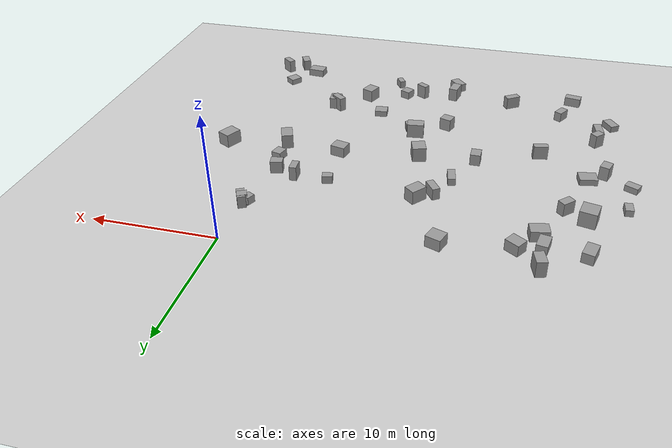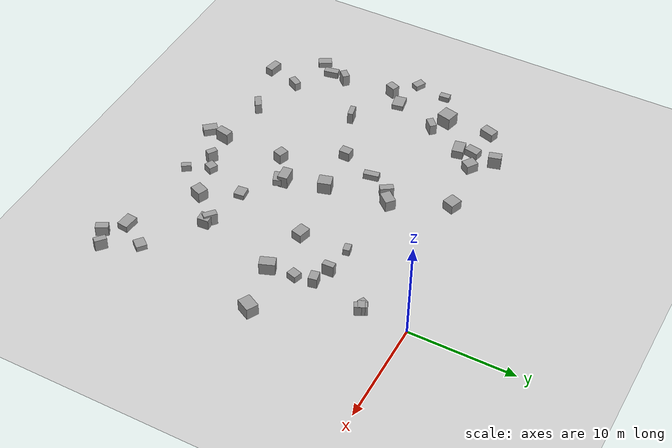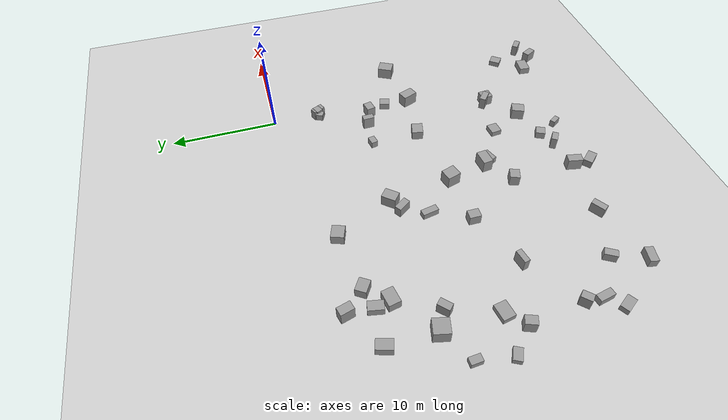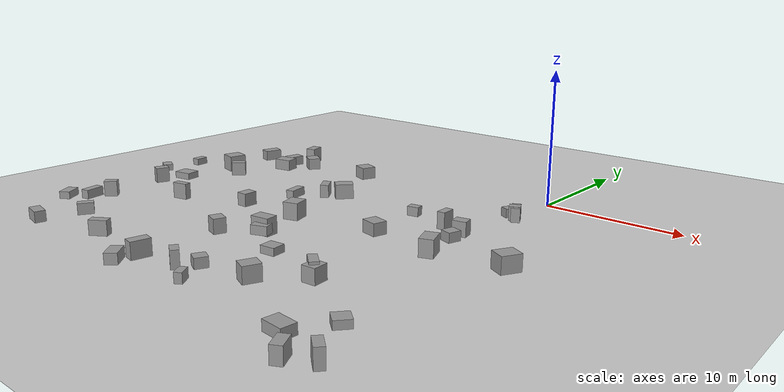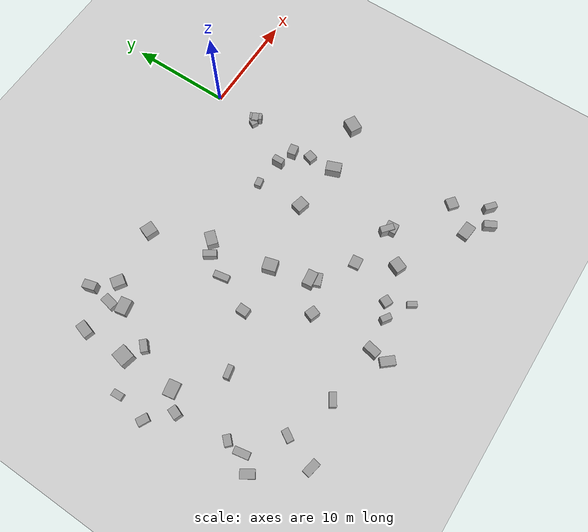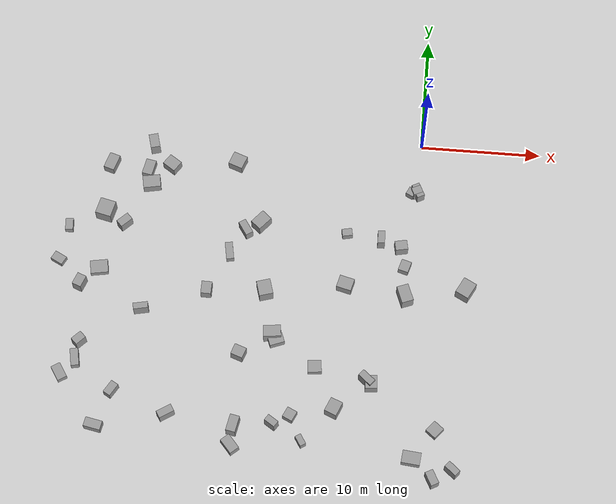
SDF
<sdf version="1.7">
 <world name="default">
  <model name="ground_plane">
   <static>1</static>
   <link name="link">
    <collision name="collision">
     <geometry><plane><normal>0 0 1</normal><size>100 100</size></plane></geometry>
     <surface><friction><ode><mu>100</mu><mu2>50</mu2></ode></friction></surface>
    </collision>
    <visual name="visual">
     <cast_shadows>0</cast_shadows>
     <geometry><plane><normal>0 0 1</normal><size>100 100</size></plane></geometry>
     <material>
      <script><uri>file://media/materials/scripts/gazebo.material</uri><name>Gazebo/Grey</name></script>
     </material>
    </visual>
   </link>
  </model>
  <model name="unit_box_1">
   <static>true</static>
   <pose>-28.835129908935965 -9.783527657663477 0.5 0 -0 257.6770218911916</pose>
   <link name="link">
    <inertial>
     <mass>1</mass>
     <inertia>
      <ixx>0.166667</ixx>
      <ixy>0</ixy>
      <ixz>0</ixz>
      <iyy>0.166667</iyy>
      <iyz>0</iyz>
      <izz>0.166667</izz>
     </inertia>
    </inertial>
    <collision name="collision">
     <geometry><box><size>0.6333953735880681 1.008863503317531 0.5489622355451517</size></box></geometry>
    </collision>
    <visual name="visual">
     <geometry><box><size>0.6333953735880681 1.008863503317531 0.5489622355451517</size></box></geometry>
     <material>
      <script><name>Gazebo/Grey</name><uri>file://media/materials/scripts/gazebo.material</uri></script>
     </material>
    </visual>
   </link>
  </model>
  <model name="unit_box_5">
   <static>true</static>
   <pose>-0.5888013018914684 -13.825873107875235 0.5 0 -0 323.95076612812113</pose>
   <link name="link">
    <inertial>
     <mass>1</mass>
     <inertia>
      <ixx>0.166667</ixx>
      <ixy>0</ixy>
      <ixz>0</ixz>
      <iyy>0.166667</iyy>
      <iyz>0</iyz>
      <izz>0.166667</izz>
     </inertia>
    </inertial>
    <collision name="collision">
     <geometry><box><size>0.9740812102403196 1.4679312028211413 1.3884404087417037</size></box></geometry>
    </collision>
    <visual name="visual">
     <geometry><box><size>0.9740812102403196 1.4679312028211413 1.3884404087417037</size></box></geometry>
     <material>
      <script><name>Gazebo/Grey</name><uri>file://media/materials/scripts/gazebo.material</uri></script>
     </material>
    </visual>
   </link>
  </model>
  <model name="unit_box_15">
   <static>true</static>
   <pose>-22.42774986537877 -5.39817078722103 0.5 0 -0 26.89385585650175</pose>
   <link name="link">
    <inertial>
     <mass>1</mass>
     <inertia>
      <ixx>0.166667</ixx>
      <ixy>0</ixy>
      <ixz>0</ixz>
      <iyy>0.166667</iyy>
      <iyz>0</iyz>
      <izz>0.166667</izz>
     </inertia>
    </inertial>
    <collision name="collision">
     <geometry><box><size>1.0752779468340803 1.451434193957634 0.884597481298783</size></box></geometry>
    </collision>
    <visual name="visual">
     <geometry><box><size>1.0752779468340803 1.451434193957634 0.884597481298783</size></box></geometry>
     <material>
      <script><name>Gazebo/Grey</name><uri>file://media/materials/scripts/gazebo.material</uri></script>
     </material>
    </visual>
   </link>
  </model>
  <model name="unit_box_24">
   <static>true</static>
   <pose>-5.674999034693748 -23.92239845263095 0.5 0 -0 20.024094226079665</pose>
   <link name="link">
    <inertial>
     <mass>1</mass>
     <inertia>
      <ixx>0.166667</ixx>
      <ixy>0</ixy>
      <ixz>0</ixz>
      <iyy>0.166667</iyy>
      <iyz>0</iyz>
      <izz>0.166667</izz>
     </inertia>
    </inertial>
    <collision name="collision">
     <geometry><box><size>1.215337846311781 1.0442918365608516 1.1445933310478278</size></box></geometry>
    </collision>
    <visual name="visual">
     <geometry><box><size>1.215337846311781 1.0442918365608516 1.1445933310478278</size></box></geometry>
     <material>
      <script><name>Gazebo/Grey</name><uri>file://media/materials/scripts/gazebo.material</uri></script>
     </material>
    </visual>
   </link>
  </model>
  <model name="unit_box_30">
   <static>true</static>
   <pose>-5.7227796839441964 -8.65081539558837 0.5 0 -0 273.5123597073977</pose>
   <link name="link">
    <inertial>
     <mass>1</mass>
     <inertia>
      <ixx>0.166667</ixx>
      <ixy>0</ixy>
      <ixz>0</ixz>
      <iyy>0.166667</iyy>
      <iyz>0</iyz>
      <izz>0.166667</izz>
     </inertia>
    </inertial>
    <collision name="collision">
     <geometry><box><size>0.8382652194335364 0.6307499962533054 0.6695288904015347</size></box></geometry>
    </collision>
    <visual name="visual">
     <geometry><box><size>0.8382652194335364 0.6307499962533054 0.6695288904015347</size></box></geometry>
     <material>
      <script><name>Gazebo/Grey</name><uri>file://media/materials/scripts/gazebo.material</uri></script>
     </material>
    </visual>
   </link>
  </model>
  <model name="unit_box_31">
   <static>true</static>
   <pose>-14.150281883332969 -8.950827690536414 0.5 0 -0 278.62585095943035</pose>
   <link name="link">
    <inertial>
     <mass>1</mass>
     <inertia>
      <ixx>0.166667</ixx>
      <ixy>0</ixy>
      <ixz>0</ixz>
      <iyy>0.166667</iyy>
      <iyz>0</iyz>
      <izz>0.166667</izz>
     </inertia>
    </inertial>
    <collision name="collision">
     <geometry><box><size>1.2906249621792236 0.6320051280488989 0.9832819269284849</size></box></geometry>
    </collision>
    <visual name="visual">
     <geometry><box><size>1.2906249621792236 0.6320051280488989 0.9832819269284849</size></box></geometry>
     <material>
      <script><name>Gazebo/Grey</name><uri>file://media/materials/scripts/gazebo.material</uri></script>
     </material>
    </visual>
   </link>
  </model>
  <model name="unit_box_32">
   <static>true</static>
   <pose>4.066421986708839 -28.262519831651417 0.5 0 -0 120.25010938333372</pose>
   <link name="link">
    <inertial>
     <mass>1</mass>
     <inertia>
      <ixx>0.166667</ixx>
      <ixy>0</ixy>
      <ixz>0</ixz>
      <iyy>0.166667</iyy>
      <iyz>0</iyz>
      <izz>0.166667</izz>
     </inertia>
    </inertial>
    <collision name="collision">
     <geometry><box><size>0.5795722155270291 1.1500049747034757 1.2832028245057363</size></box></geometry>
    </collision>
    <visual name="visual">
     <geometry><box><size>0.5795722155270291 1.1500049747034757 1.2832028245057363</size></box></geometry>
     <material>
      <script><name>Gazebo/Grey</name><uri>file://media/materials/scripts/gazebo.material</uri></script>
     </material>
    </visual>
   </link>
  </model>
  <model name="unit_box_36">
   <static>true</static>
   <pose>-13.676016141193546 -27.61321423329436 0.5 0 -0 266.1799930001511</pose>
   <link name="link">
    <inertial>
     <mass>1</mass>
     <inertia>
      <ixx>0.166667</ixx>
      <ixy>0</ixy>
      <ixz>0</ixz>
      <iyy>0.166667</iyy>
      <iyz>0</iyz>
      <izz>0.166667</izz>
     </inertia>
    </inertial>
    <collision name="collision">
     <geometry><box><size>1.3806587493684201 0.8453353389300957 0.7502782253469399</size></box></geometry>
    </collision>
    <visual name="visual">
     <geometry><box><size>1.3806587493684201 0.8453353389300957 0.7502782253469399</size></box></geometry>
     <material>
      <script><name>Gazebo/Grey</name><uri>file://media/materials/scripts/gazebo.material</uri></script>
     </material>
    </visual>
   </link>
  </model>
  <model name="unit_box_41">
   <static>true</static>
   <pose>-20.880846432795693 -3.5714569044857534 0.5 0 -0 8.834705397557126</pose>
   <link name="link">
    <inertial>
     <mass>1</mass>
     <inertia>
      <ixx>0.166667</ixx>
      <ixy>0</ixy>
      <ixz>0</ixz>
      <iyy>0.166667</iyy>
      <iyz>0</iyz>
      <izz>0.166667</izz>
     </inertia>
    </inertial>
    <collision name="collision">
     <geometry><box><size>1.1835107260073632 0.9937436465557536 0.9247212692741201</size></box></geometry>
    </collision>
    <visual name="visual">
     <geometry><box><size>1.1835107260073632 0.9937436465557536 0.9247212692741201</size></box></geometry>
     <material>
      <script><name>Gazebo/Grey</name><uri>file://media/materials/scripts/gazebo.material</uri></script>
     </material>
    </visual>
   </link>
  </model>
  <model name="unit_box_45">
   <static>true</static>
   <pose>-0.07162630095542966 -4.427317866867625 0.5 0 -0 355.4649861310336</pose>
   <link name="link">
    <inertial>
     <mass>1</mass>
     <inertia>
      <ixx>0.166667</ixx>
      <ixy>0</ixy>
      <ixz>0</ixz>
      <iyy>0.166667</iyy>
      <iyz>0</iyz>
      <izz>0.166667</izz>
     </inertia>
    </inertial>
    <collision name="collision">
     <geometry><box><size>0.6480502307317497 1.1926558393352256 1.0270985599752414</size></box></geometry>
    </collision>
    <visual name="visual">
     <geometry><box><size>0.6480502307317497 1.1926558393352256 1.0270985599752414</size></box></geometry>
     <material>
      <script><name>Gazebo/Grey</name><uri>file://media/materials/scripts/gazebo.material</uri></script>
     </material>
    </visual>
   </link>
  </model>
  <model name="unit_box_50">
   <static>true</static>
   <pose>-13.702313754472232 -19.842423253167865 0.5 0 -0 12.22615030335728</pose>
   <link name="link">
    <inertial>
     <mass>1</mass>
     <inertia>
      <ixx>0.166667</ixx>
      <ixy>0</ixy>
      <ixz>0</ixz>
      <iyy>0.166667</iyy>
      <iyz>0</iyz>
      <izz>0.166667</izz>
     </inertia>
    </inertial>
    <collision name="collision">
     <geometry><box><size>1.0151287739844679 0.9084703975695492 1.084861941129661</size></box></geometry>
    </collision>
    <visual name="visual">
     <geometry><box><size>1.0151287739844679 0.9084703975695492 1.084861941129661</size></box></geometry>
     <material>
      <script><name>Gazebo/Grey</name><uri>file://media/materials/scripts/gazebo.material</uri></script>
     </material>
    </visual>
   </link>
  </model>
  <model name="unit_box_51">
   <static>true</static>
   <pose>-8.088868347634431 -26.84699272649932 0.5 0 -0 310.0146221195165</pose>
   <link name="link">
    <inertial>
     <mass>1</mass>
     <inertia>
      <ixx>0.166667</ixx>
      <ixy>0</ixy>
      <ixz>0</ixz>
      <iyy>0.166667</iyy>
      <iyz>0</iyz>
      <izz>0.166667</izz>
     </inertia>
    </inertial>
    <collision name="collision">
     <geometry><box><size>0.915104690532168 0.5099911999001068 0.6950304844249293</size></box></geometry>
    </collision>
    <visual name="visual">
     <geometry><box><size>0.915104690532168 0.5099911999001068 0.6950304844249293</size></box></geometry>
     <material>
      <script><name>Gazebo/Grey</name><uri>file://media/materials/scripts/gazebo.material</uri></script>
     </material>
    </visual>
   </link>
  </model>
  <model name="unit_box_53">
   <static>true</static>
   <pose>-26.903335476549714 -21.3723237218221 0.5 0 -0 249.94306405126957</pose>
   <link name="link">
    <inertial>
     <mass>1</mass>
     <inertia>
      <ixx>0.166667</ixx>
      <ixy>0</ixy>
      <ixz>0</ixz>
      <iyy>0.166667</iyy>
      <iyz>0</iyz>
      <izz>0.166667</izz>
     </inertia>
    </inertial>
    <collision name="collision">
     <geometry><box><size>1.449195397385079 0.6641024886767991 0.6800975156356679</size></box></geometry>
    </collision>
    <visual name="visual">
     <geometry><box><size>1.449195397385079 0.6641024886767991 0.6800975156356679</size></box></geometry>
     <material>
      <script><name>Gazebo/Grey</name><uri>file://media/materials/scripts/gazebo.material</uri></script>
     </material>
    </visual>
   </link>
  </model>
  <model name="unit_box_54">
   <static>true</static>
   <pose>-16.86672693158045 -14.557856849215336 0.5 0 -0 325.14069538919586</pose>
   <link name="link">
    <inertial>
     <mass>1</mass>
     <inertia>
      <ixx>0.166667</ixx>
      <ixy>0</ixy>
      <ixz>0</ixz>
      <iyy>0.166667</iyy>
      <iyz>0</iyz>
      <izz>0.166667</izz>
     </inertia>
    </inertial>
    <collision name="collision">
     <geometry><box><size>1.058343786446157 0.848355353292623 0.982864033663327</size></box></geometry>
    </collision>
    <visual name="visual">
     <geometry><box><size>1.058343786446157 0.848355353292623 0.982864033663327</size></box></geometry>
     <material>
      <script><name>Gazebo/Grey</name><uri>file://media/materials/scripts/gazebo.material</uri></script>
     </material>
    </visual>
   </link>
  </model>
  <model name="unit_box_56">
   <static>true</static>
   <pose>-0.1627593552055835 -4.416408330676138 0.5 0 -0 89.96705811375831</pose>
   <link name="link">
    <inertial>
     <mass>1</mass>
     <inertia>
      <ixx>0.166667</ixx>
      <ixy>0</ixy>
      <ixz>0</ixz>
      <iyy>0.166667</iyy>
      <iyz>0</iyz>
      <izz>0.166667</izz>
     </inertia>
    </inertial>
    <collision name="collision">
     <geometry><box><size>0.6525024454428184 0.7996111831120352 1.0432135367207624</size></box></geometry>
    </collision>
    <visual name="visual">
     <geometry><box><size>0.6525024454428184 0.7996111831120352 1.0432135367207624</size></box></geometry>
     <material>
      <script><name>Gazebo/Grey</name><uri>file://media/materials/scripts/gazebo.material</uri></script>
     </material>
    </visual>
   </link>
  </model>
  <model name="unit_box_57">
   <static>true</static>
   <pose>4.363951082256413 -12.913666246183752 0.5 0 -0 10.509507553653169</pose>
   <link name="link">
    <inertial>
     <mass>1</mass>
     <inertia>
      <ixx>0.166667</ixx>
      <ixy>0</ixy>
      <ixz>0</ixz>
      <iyy>0.166667</iyy>
      <iyz>0</iyz>
      <izz>0.166667</izz>
     </inertia>
    </inertial>
    <collision name="collision">
     <geometry><box><size>1.4317829191842009 1.1697585779740316 1.2310805891900445</size></box></geometry>
    </collision>
    <visual name="visual">
     <geometry><box><size>1.4317829191842009 1.1697585779740316 1.2310805891900445</size></box></geometry>
     <material>
      <script><name>Gazebo/Grey</name><uri>file://media/materials/scripts/gazebo.material</uri></script>
     </material>
    </visual>
   </link>
  </model>
  <model name="unit_box_60">
   <static>true</static>
   <pose>-15.382795874876035 -2.8888881738511216 0.5 0 -0 89.18422930194788</pose>
   <link name="link">
    <inertial>
     <mass>1</mass>
     <inertia>
      <ixx>0.166667</ixx>
      <ixy>0</ixy>
      <ixz>0</ixz>
      <iyy>0.166667</iyy>
      <iyz>0</iyz>
      <izz>0.166667</izz>
     </inertia>
    </inertial>
    <collision name="collision">
     <geometry><box><size>1.1505220542869972 1.221154632923616 0.9489783817124646</size></box></geometry>
    </collision>
    <visual name="visual">
     <geometry><box><size>1.1505220542869972 1.221154632923616 0.9489783817124646</size></box></geometry>
     <material>
      <script><name>Gazebo/Grey</name><uri>file://media/materials/scripts/gazebo.material</uri></script>
     </material>
    </visual>
   </link>
  </model>
  <model name="unit_box_62">
   <static>true</static>
   <pose>-28.002578629247843 -22.706438295648052 0.5 0 -0 342.9972774034971</pose>
   <link name="link">
    <inertial>
     <mass>1</mass>
     <inertia>
      <ixx>0.166667</ixx>
      <ixy>0</ixy>
      <ixz>0</ixz>
      <iyy>0.166667</iyy>
      <iyz>0</iyz>
      <izz>0.166667</izz>
     </inertia>
    </inertial>
    <collision name="collision">
     <geometry><box><size>0.8107595487904791 1.3209959864893877 0.5546446229403509</size></box></geometry>
    </collision>
    <visual name="visual">
     <geometry><box><size>0.8107595487904791 1.3209959864893877 0.5546446229403509</size></box></geometry>
     <material>
      <script><name>Gazebo/Grey</name><uri>file://media/materials/scripts/gazebo.material</uri></script>
     </material>
    </visual>
   </link>
  </model>
  <model name="unit_box_69">
   <static>true</static>
   <pose>-12.919979660821323 -8.225766813106919 0.5 0 -0 253.76334588681692</pose>
   <link name="link">
    <inertial>
     <mass>1</mass>
     <inertia>
      <ixx>0.166667</ixx>
      <ixy>0</ixy>
      <ixz>0</ixz>
      <iyy>0.166667</iyy>
      <iyz>0</iyz>
      <izz>0.166667</izz>
     </inertia>
    </inertial>
    <collision name="collision">
     <geometry><box><size>1.0032102132006482 1.3523201635877866 1.1660962876519823</size></box></geometry>
    </collision>
    <visual name="visual">
     <geometry><box><size>1.0032102132006482 1.3523201635877866 1.1660962876519823</size></box></geometry>
     <material>
      <script><name>Gazebo/Grey</name><uri>file://media/materials/scripts/gazebo.material</uri></script>
     </material>
    </visual>
   </link>
  </model>
  <model name="unit_box_75">
   <static>true</static>
   <pose>-27.329953423885375 -14.80467316536039 0.5 0 -0 92.3097299558322</pose>
   <link name="link">
    <inertial>
     <mass>1</mass>
     <inertia>
      <ixx>0.166667</ixx>
      <ixy>0</ixy>
      <ixz>0</ixz>
      <iyy>0.166667</iyy>
      <iyz>0</iyz>
      <izz>0.166667</izz>
     </inertia>
    </inertial>
    <collision name="collision">
     <geometry><box><size>1.0213199452424038 0.7778642463605053 1.275125065980197</size></box></geometry>
    </collision>
    <visual name="visual">
     <geometry><box><size>1.0213199452424038 0.7778642463605053 1.275125065980197</size></box></geometry>
     <material>
      <script><name>Gazebo/Grey</name><uri>file://media/materials/scripts/gazebo.material</uri></script>
     </material>
    </visual>
   </link>
  </model>
  <model name="unit_box_76">
   <static>true</static>
   <pose>-10.780827730360564 -18.531347478639255 0.5 0 -0 173.1548575804905</pose>
   <link name="link">
    <inertial>
     <mass>1</mass>
     <inertia>
      <ixx>0.166667</ixx>
      <ixy>0</ixy>
      <ixz>0</ixz>
      <iyy>0.166667</iyy>
      <iyz>0</iyz>
      <izz>0.166667</izz>
     </inertia>
    </inertial>
    <collision name="collision">
     <geometry><box><size>1.2242768903931343 0.7993462926046933 0.6644635633997723</size></box></geometry>
    </collision>
    <visual name="visual">
     <geometry><box><size>1.2242768903931343 0.7993462926046933 0.6644635633997723</size></box></geometry>
     <material>
      <script><name>Gazebo/Grey</name><uri>file://media/materials/scripts/gazebo.material</uri></script>
     </material>
    </visual>
   </link>
  </model>
  <model name="unit_box_79">
   <static>true</static>
   <pose>-11.150601816645203 -17.9557721092781 0.5 0 -0 342.547774160703</pose>
   <link name="link">
    <inertial>
     <mass>1</mass>
     <inertia>
      <ixx>0.166667</ixx>
      <ixy>0</ixy>
      <ixz>0</ixz>
      <iyy>0.166667</iyy>
      <iyz>0</iyz>
      <izz>0.166667</izz>
     </inertia>
    </inertial>
    <collision name="collision">
     <geometry><box><size>1.4432531057401534 0.9494697712872557 1.4013684911596156</size></box></geometry>
    </collision>
    <visual name="visual">
     <geometry><box><size>1.4432531057401534 0.9494697712872557 1.4013684911596156</size></box></geometry>
     <material>
      <script><name>Gazebo/Grey</name><uri>file://media/materials/scripts/gazebo.material</uri></script>
     </material>
    </visual>
   </link>
  </model>
  <model name="unit_box_82">
   <static>true</static>
   <pose>-2.8597360139564927 -8.96867438262672 0.5 0 -0 64.43532968808522</pose>
   <link name="link">
    <inertial>
     <mass>1</mass>
     <inertia>
      <ixx>0.166667</ixx>
      <ixy>0</ixy>
      <ixz>0</ixz>
      <iyy>0.166667</iyy>
      <iyz>0</iyz>
      <izz>0.166667</izz>
     </inertia>
    </inertial>
    <collision name="collision">
     <geometry><box><size>1.0762966450172287 0.5867985951930494 1.3789770119374096</size></box></geometry>
    </collision>
    <visual name="visual">
     <geometry><box><size>1.0762966450172287 0.5867985951930494 1.3789770119374096</size></box></geometry>
     <material>
      <script><name>Gazebo/Grey</name><uri>file://media/materials/scripts/gazebo.material</uri></script>
     </material>
    </visual>
   </link>
  </model>
  <model name="unit_box_86">
   <static>true</static>
   <pose>-5.52412763881555 -13.220566043196456 0.5 0 -0 329.6216323987533</pose>
   <link name="link">
    <inertial>
     <mass>1</mass>
     <inertia>
      <ixx>0.166667</ixx>
      <ixy>0</ixy>
      <ixz>0</ixz>
      <iyy>0.166667</iyy>
      <iyz>0</iyz>
      <izz>0.166667</izz>
     </inertia>
    </inertial>
    <collision name="collision">
     <geometry><box><size>1.250972243997115 1.0544059697883832 0.9082702575545696</size></box></geometry>
    </collision>
    <visual name="visual">
     <geometry><box><size>1.250972243997115 1.0544059697883832 0.9082702575545696</size></box></geometry>
     <material>
      <script><name>Gazebo/Grey</name><uri>file://media/materials/scripts/gazebo.material</uri></script>
     </material>
    </visual>
   </link>
  </model>
  <model name="unit_box_88">
   <static>true</static>
   <pose>-25.970576175082144 -3.831207680601114 0.5 0 -0 249.45839759626088</pose>
   <link name="link">
    <inertial>
     <mass>1</mass>
     <inertia>
      <ixx>0.166667</ixx>
      <ixy>0</ixy>
      <ixz>0</ixz>
      <iyy>0.166667</iyy>
      <iyz>0</iyz>
      <izz>0.166667</izz>
     </inertia>
    </inertial>
    <collision name="collision">
     <geometry><box><size>1.390682521830613 0.9060192201787781 0.8406042739315591</size></box></geometry>
    </collision>
    <visual name="visual">
     <geometry><box><size>1.390682521830613 0.9060192201787781 0.8406042739315591</size></box></geometry>
     <material>
      <script><name>Gazebo/Grey</name><uri>file://media/materials/scripts/gazebo.material</uri></script>
     </material>
    </visual>
   </link>
  </model>
  <model name="unit_box_93">
   <static>true</static>
   <pose>2.5041718747261186 -29.11037067503804 0.5 0 -0 234.53612259332502</pose>
   <link name="link">
    <inertial>
     <mass>1</mass>
     <inertia>
      <ixx>0.166667</ixx>
      <ixy>0</ixy>
      <ixz>0</ixz>
      <iyy>0.166667</iyy>
      <iyz>0</iyz>
      <izz>0.166667</izz>
     </inertia>
    </inertial>
    <collision name="collision">
     <geometry><box><size>1.1976015078779625 0.6849161573596246 1.0417253650326055</size></box></geometry>
    </collision>
    <visual name="visual">
     <geometry><box><size>1.1976015078779625 0.6849161573596246 1.0417253650326055</size></box></geometry>
     <material>
      <script><name>Gazebo/Grey</name><uri>file://media/materials/scripts/gazebo.material</uri></script>
     </material>
    </visual>
   </link>
  </model>
  <model name="unit_box_94">
   <static>true</static>
   <pose>-23.64493626088512 -23.792190527400095 0.5 0 -0 195.81801375233917</pose>
   <link name="link">
    <inertial>
     <mass>1</mass>
     <inertia>
      <ixx>0.166667</ixx>
      <ixy>0</ixy>
      <ixz>0</ixz>
      <iyy>0.166667</iyy>
      <iyz>0</iyz>
      <izz>0.166667</izz>
     </inertia>
    </inertial>
    <collision name="collision">
     <geometry><box><size>1.1436372856994101 0.6582605695436917 0.8404823278149156</size></box></geometry>
    </collision>
    <visual name="visual">
     <geometry><box><size>1.1436372856994101 0.6582605695436917 0.8404823278149156</size></box></geometry>
     <material>
      <script><name>Gazebo/Grey</name><uri>file://media/materials/scripts/gazebo.material</uri></script>
     </material>
    </visual>
   </link>
  </model>
  <model name="unit_box_103">
   <static>true</static>
   <pose>-24.270722881917465 -9.137512447708374 0.5 0 -0 104.44406842749605</pose>
   <link name="link">
    <inertial>
     <mass>1</mass>
     <inertia>
      <ixx>0.166667</ixx>
      <ixy>0</ixy>
      <ixz>0</ixz>
      <iyy>0.166667</iyy>
      <iyz>0</iyz>
      <izz>0.166667</izz>
     </inertia>
    </inertial>
    <collision name="collision">
     <geometry><box><size>1.1195047007480607 0.6769780347755547 1.0932652558875944</size></box></geometry>
    </collision>
    <visual name="visual">
     <geometry><box><size>1.1195047007480607 0.6769780347755547 1.0932652558875944</size></box></geometry>
     <material>
      <script><name>Gazebo/Grey</name><uri>file://media/materials/scripts/gazebo.material</uri></script>
     </material>
    </visual>
   </link>
  </model>
  <model name="unit_box_105">
   <static>true</static>
   <pose>-0.7549364740408038 -11.270843162729467 0.5 0 -0 269.89048490756164</pose>
   <link name="link">
    <inertial>
     <mass>1</mass>
     <inertia>
      <ixx>0.166667</ixx>
      <ixy>0</ixy>
      <ixz>0</ixz>
      <iyy>0.166667</iyy>
      <iyz>0</iyz>
      <izz>0.166667</izz>
     </inertia>
    </inertial>
    <collision name="collision">
     <geometry><box><size>0.842907330494857 0.9656970036796222 0.6986535023273517</size></box></geometry>
    </collision>
    <visual name="visual">
     <geometry><box><size>0.842907330494857 0.9656970036796222 0.6986535023273517</size></box></geometry>
     <material>
      <script><name>Gazebo/Grey</name><uri>file://media/materials/scripts/gazebo.material</uri></script>
     </material>
    </visual>
   </link>
  </model>
  <model name="unit_box_108">
   <static>true</static>
   <pose>-25.943519172481395 -8.206017503302757 0.5 0 -0 263.66269752338144</pose>
   <link name="link">
    <inertial>
     <mass>1</mass>
     <inertia>
      <ixx>0.166667</ixx>
      <ixy>0</ixy>
      <ixz>0</ixz>
      <iyy>0.166667</iyy>
      <iyz>0</iyz>
      <izz>0.166667</izz>
     </inertia>
    </inertial>
    <collision name="collision">
     <geometry><box><size>1.3309441331383227 1.393098188280984 1.4765892326491645</size></box></geometry>
    </collision>
    <visual name="visual">
     <geometry><box><size>1.3309441331383227 1.393098188280984 1.4765892326491645</size></box></geometry>
     <material>
      <script><name>Gazebo/Grey</name><uri>file://media/materials/scripts/gazebo.material</uri></script>
     </material>
    </visual>
   </link>
  </model>
  <model name="unit_box_111">
   <static>true</static>
   <pose>2.5140454896421573 -25.082466300838632 0.5 0 -0 145.40396829274314</pose>
   <link name="link">
    <inertial>
     <mass>1</mass>
     <inertia>
      <ixx>0.166667</ixx>
      <ixy>0</ixy>
      <ixz>0</ixz>
      <iyy>0.166667</iyy>
      <iyz>0</iyz>
      <izz>0.166667</izz>
     </inertia>
    </inertial>
    <collision name="collision">
     <geometry><box><size>1.051425492309324 0.9988535584595295 0.5193801856656497</size></box></geometry>
    </collision>
    <visual name="visual">
     <geometry><box><size>1.051425492309324 0.9988535584595295 0.5193801856656497</size></box></geometry>
     <material>
      <script><name>Gazebo/Grey</name><uri>file://media/materials/scripts/gazebo.material</uri></script>
     </material>
    </visual>
   </link>
  </model>
  <model name="unit_box_114">
   <static>true</static>
   <pose>-9.121270378849324 -24.764282885561585 0.5 0 -0 199.04694045895627</pose>
   <link name="link">
    <inertial>
     <mass>1</mass>
     <inertia>
      <ixx>0.166667</ixx>
      <ixy>0</ixy>
      <ixz>0</ixz>
      <iyy>0.166667</iyy>
      <iyz>0</iyz>
      <izz>0.166667</izz>
     </inertia>
    </inertial>
    <collision name="collision">
     <geometry><box><size>0.891667552162032 0.8718859594007828 0.7055822029107259</size></box></geometry>
    </collision>
    <visual name="visual">
     <geometry><box><size>0.891667552162032 0.8718859594007828 0.7055822029107259</size></box></geometry>
     <material>
      <script><name>Gazebo/Grey</name><uri>file://media/materials/scripts/gazebo.material</uri></script>
     </material>
    </visual>
   </link>
  </model>
  <model name="unit_box_116">
   <static>true</static>
   <pose>-19.064922725867266 -25.391374349597363 0.5 0 -0 189.0693066741532</pose>
   <link name="link">
    <inertial>
     <mass>1</mass>
     <inertia>
      <ixx>0.166667</ixx>
      <ixy>0</ixy>
      <ixz>0</ixz>
      <iyy>0.166667</iyy>
      <iyz>0</iyz>
      <izz>0.166667</izz>
     </inertia>
    </inertial>
    <collision name="collision">
     <geometry><box><size>1.3031391249101119 0.6438863541769869 1.085510168988983</size></box></geometry>
    </collision>
    <visual name="visual">
     <geometry><box><size>1.3031391249101119 0.6438863541769869 1.085510168988983</size></box></geometry>
     <material>
      <script><name>Gazebo/Grey</name><uri>file://media/materials/scripts/gazebo.material</uri></script>
     </material>
    </visual>
   </link>
  </model>
  <model name="unit_box_120">
   <static>true</static>
   <pose>-12.082757167958487 -14.245932967617065 0.5 0 -0 311.30549535503</pose>
   <link name="link">
    <inertial>
     <mass>1</mass>
     <inertia>
      <ixx>0.166667</ixx>
      <ixy>0</ixy>
      <ixz>0</ixz>
      <iyy>0.166667</iyy>
      <iyz>0</iyz>
      <izz>0.166667</izz>
     </inertia>
    </inertial>
    <collision name="collision">
     <geometry><box><size>1.1449115028688235 1.2929758630715367 1.4218262733875662</size></box></geometry>
    </collision>
    <visual name="visual">
     <geometry><box><size>1.1449115028688235 1.2929758630715367 1.4218262733875662</size></box></geometry>
     <material>
      <script><name>Gazebo/Grey</name><uri>file://media/materials/scripts/gazebo.material</uri></script>
     </material>
    </visual>
   </link>
  </model>
  <model name="unit_box_136">
   <static>true</static>
   <pose>-10.527784298516053 -25.53469036462216 0.5 0 -0 159.63751246470568</pose>
   <link name="link">
    <inertial>
     <mass>1</mass>
     <inertia>
      <ixx>0.166667</ixx>
      <ixy>0</ixy>
      <ixz>0</ixz>
      <iyy>0.166667</iyy>
      <iyz>0</iyz>
      <izz>0.166667</izz>
     </inertia>
    </inertial>
    <collision name="collision">
     <geometry><box><size>0.9843431907560888 0.5717735969917337 1.3860540643989236</size></box></geometry>
    </collision>
    <visual name="visual">
     <geometry><box><size>0.9843431907560888 0.5717735969917337 1.3860540643989236</size></box></geometry>
     <material>
      <script><name>Gazebo/Grey</name><uri>file://media/materials/scripts/gazebo.material</uri></script>
     </material>
    </visual>
   </link>
  </model>
  <model name="unit_box_137">
   <static>true</static>
   <pose>-29.31485577313252 -12.852293881171363 0.5 0 -0 222.57792413476986</pose>
   <link name="link">
    <inertial>
     <mass>1</mass>
     <inertia>
      <ixx>0.166667</ixx>
      <ixy>0</ixy>
      <ixz>0</ixz>
      <iyy>0.166667</iyy>
      <iyz>0</iyz>
      <izz>0.166667</izz>
     </inertia>
    </inertial>
    <collision name="collision">
     <geometry><box><size>1.0746588437968039 0.7488954385505026 0.517474465300351</size></box></geometry>
    </collision>
    <visual name="visual">
     <geometry><box><size>1.0746588437968039 0.7488954385505026 0.517474465300351</size></box></geometry>
     <material>
      <script><name>Gazebo/Grey</name><uri>file://media/materials/scripts/gazebo.material</uri></script>
     </material>
    </visual>
   </link>
  </model>
  <model name="unit_box_138">
   <static>true</static>
   <pose>-24.7122029602385 -26.85423202612297 0.5 0 -0 279.40554093123126</pose>
   <link name="link">
    <inertial>
     <mass>1</mass>
     <inertia>
      <ixx>0.166667</ixx>
      <ixy>0</ixy>
      <ixz>0</ixz>
      <iyy>0.166667</iyy>
      <iyz>0</iyz>
      <izz>0.166667</izz>
     </inertia>
    </inertial>
    <collision name="collision">
     <geometry><box><size>1.3966408830427541 0.7632212700651606 0.8148546180579881</size></box></geometry>
    </collision>
    <visual name="visual">
     <geometry><box><size>1.3966408830427541 0.7632212700651606 0.8148546180579881</size></box></geometry>
     <material>
      <script><name>Gazebo/Grey</name><uri>file://media/materials/scripts/gazebo.material</uri></script>
     </material>
    </visual>
   </link>
  </model>
  <model name="unit_box_143">
   <static>true</static>
   <pose>-15.313968002824636 -11.07339158130339 0.5 0 -0 128.98800123097615</pose>
   <link name="link">
    <inertial>
     <mass>1</mass>
     <inertia>
      <ixx>0.166667</ixx>
      <ixy>0</ixy>
      <ixz>0</ixz>
      <iyy>0.166667</iyy>
      <iyz>0</iyz>
      <izz>0.166667</izz>
     </inertia>
    </inertial>
    <collision name="collision">
     <geometry><box><size>0.6222808376286858 1.4752365384296497 0.6137581758788326</size></box></geometry>
    </collision>
    <visual name="visual">
     <geometry><box><size>0.6222808376286858 1.4752365384296497 0.6137581758788326</size></box></geometry>
     <material>
      <script><name>Gazebo/Grey</name><uri>file://media/materials/scripts/gazebo.material</uri></script>
     </material>
    </visual>
   </link>
  </model>
  <model name="unit_box_146">
   <static>true</static>
   <pose>-22.584742435832684 -1.7739527721841988 0.5 0 -0 108.65281481985213</pose>
   <link name="link">
    <inertial>
     <mass>1</mass>
     <inertia>
      <ixx>0.166667</ixx>
      <ixy>0</ixy>
      <ixz>0</ixz>
      <iyy>0.166667</iyy>
      <iyz>0</iyz>
      <izz>0.166667</izz>
     </inertia>
    </inertial>
    <collision name="collision">
     <geometry><box><size>1.2155827953981921 0.7841635510270037 1.4883105259146885</size></box></geometry>
    </collision>
    <visual name="visual">
     <geometry><box><size>1.2155827953981921 0.7841635510270037 1.4883105259146885</size></box></geometry>
     <material>
      <script><name>Gazebo/Grey</name><uri>file://media/materials/scripts/gazebo.material</uri></script>
     </material>
    </visual>
   </link>
  </model>
  <model name="unit_box_155">
   <static>true</static>
   <pose>-3.1949274180687155 -21.306508730439937 0.5 0 -0 332.3065087517892</pose>
   <link name="link">
    <inertial>
     <mass>1</mass>
     <inertia>
      <ixx>0.166667</ixx>
      <ixy>0</ixy>
      <ixz>0</ixz>
      <iyy>0.166667</iyy>
      <iyz>0</iyz>
      <izz>0.166667</izz>
     </inertia>
    </inertial>
    <collision name="collision">
     <geometry><box><size>1.2871721718793845 0.6110050466758441 1.4189676595077463</size></box></geometry>
    </collision>
    <visual name="visual">
     <geometry><box><size>1.2871721718793845 0.6110050466758441 1.4189676595077463</size></box></geometry>
     <material>
      <script><name>Gazebo/Grey</name><uri>file://media/materials/scripts/gazebo.material</uri></script>
     </material>
    </visual>
   </link>
  </model>
  <model name="unit_box_158">
   <static>true</static>
   <pose>-7.470922061853194 -20.55809659220439 0.5 0 -0 326.8309633582114</pose>
   <link name="link">
    <inertial>
     <mass>1</mass>
     <inertia>
      <ixx>0.166667</ixx>
      <ixy>0</ixy>
      <ixz>0</ixz>
      <iyy>0.166667</iyy>
      <iyz>0</iyz>
      <izz>0.166667</izz>
     </inertia>
    </inertial>
    <collision name="collision">
     <geometry><box><size>1.0992286121952404 0.9995466624105462 0.5265018948623373</size></box></geometry>
    </collision>
    <visual name="visual">
     <geometry><box><size>1.0992286121952404 0.9995466624105462 0.5265018948623373</size></box></geometry>
     <material>
      <script><name>Gazebo/Grey</name><uri>file://media/materials/scripts/gazebo.material</uri></script>
     </material>
    </visual>
   </link>
  </model>
  <model name="unit_box_162">
   <static>true</static>
   <pose>-22.056507101337004 -16.63262410918653 0.5 0 -0 169.84929425094438</pose>
   <link name="link">
    <inertial>
     <mass>1</mass>
     <inertia>
      <ixx>0.166667</ixx>
      <ixy>0</ixy>
      <ixz>0</ixz>
      <iyy>0.166667</iyy>
      <iyz>0</iyz>
      <izz>0.166667</izz>
     </inertia>
    </inertial>
    <collision name="collision">
     <geometry><box><size>1.217282029851049 0.5236528606771935 1.3339238444534105</size></box></geometry>
    </collision>
    <visual name="visual">
     <geometry><box><size>1.217282029851049 0.5236528606771935 1.3339238444534105</size></box></geometry>
     <material>
      <script><name>Gazebo/Grey</name><uri>file://media/materials/scripts/gazebo.material</uri></script>
     </material>
    </visual>
   </link>
  </model>
  <model name="unit_box_167">
   <static>true</static>
   <pose>0.7822885418978807 -27.56741245102027 0.5 0 -0 207.2449442932833</pose>
   <link name="link">
    <inertial>
     <mass>1</mass>
     <inertia>
      <ixx>0.166667</ixx>
      <ixy>0</ixy>
      <ixz>0</ixz>
      <iyy>0.166667</iyy>
      <iyz>0</iyz>
      <izz>0.166667</izz>
     </inertia>
    </inertial>
    <collision name="collision">
     <geometry><box><size>1.495022223049976 1.0422779697378537 0.6718434544644931</size></box></geometry>
    </collision>
    <visual name="visual">
     <geometry><box><size>1.495022223049976 1.0422779697378537 0.6718434544644931</size></box></geometry>
     <material>
      <script><name>Gazebo/Grey</name><uri>file://media/materials/scripts/gazebo.material</uri></script>
     </material>
    </visual>
   </link>
  </model>
  <model name="unit_box_176">
   <static>true</static>
   <pose>-26.74309055458613 -19.829971611312295 0.5 0 -0 41.64063511624968</pose>
   <link name="link">
    <inertial>
     <mass>1</mass>
     <inertia>
      <ixx>0.166667</ixx>
      <ixy>0</ixy>
      <ixz>0</ixz>
      <iyy>0.166667</iyy>
      <iyz>0</iyz>
      <izz>0.166667</izz>
     </inertia>
    </inertial>
    <collision name="collision">
     <geometry><box><size>0.9688310957641189 0.6845055104993996 1.2777834711541816</size></box></geometry>
    </collision>
    <visual name="visual">
     <geometry><box><size>0.9688310957641189 0.6845055104993996 1.2777834711541816</size></box></geometry>
     <material>
      <script><name>Gazebo/Grey</name><uri>file://media/materials/scripts/gazebo.material</uri></script>
     </material>
    </visual>
   </link>
  </model>
  <model name="unit_box_177">
   <static>true</static>
   <pose>-22.793001962504746 -4.077021169741585 0.5 0 -0 87.76879666255141</pose>
   <link name="link">
    <inertial>
     <mass>1</mass>
     <inertia>
      <ixx>0.166667</ixx>
      <ixy>0</ixy>
      <ixz>0</ixz>
      <iyy>0.166667</iyy>
      <iyz>0</iyz>
      <izz>0.166667</izz>
     </inertia>
    </inertial>
    <collision name="collision">
     <geometry><box><size>0.8576794114662937 1.3439852315698944 0.7383637905725656</size></box></geometry>
    </collision>
    <visual name="visual">
     <geometry><box><size>0.8576794114662937 1.3439852315698944 0.7383637905725656</size></box></geometry>
     <material>
      <script><name>Gazebo/Grey</name><uri>file://media/materials/scripts/gazebo.material</uri></script>
     </material>
    </visual>
   </link>
  </model>
  <model name="unit_box_184">
   <static>true</static>
   <pose>-0.6400892593243022 -4.533950580757349 0.5 0 -0 348.2522548972163</pose>
   <link name="link">
    <inertial>
     <mass>1</mass>
     <inertia>
      <ixx>0.166667</ixx>
      <ixy>0</ixy>
      <ixz>0</ixz>
      <iyy>0.166667</iyy>
      <iyz>0</iyz>
      <izz>0.166667</izz>
     </inertia>
    </inertial>
    <collision name="collision">
     <geometry><box><size>0.6558227148057318 0.6769900633880243 0.6478888473824328</size></box></geometry>
    </collision>
    <visual name="visual">
     <geometry><box><size>0.6558227148057318 0.6769900633880243 0.6478888473824328</size></box></geometry>
     <material>
      <script><name>Gazebo/Grey</name><uri>file://media/materials/scripts/gazebo.material</uri></script>
     </material>
    </visual>
   </link>
  </model>
  <model name="unit_box_185">
   <static>true</static>
   <pose>-25.889209209458258 -13.356926078816727 0.5 0 -0 146.25699969219423</pose>
   <link name="link">
    <inertial>
     <mass>1</mass>
     <inertia>
      <ixx>0.166667</ixx>
      <ixy>0</ixy>
      <ixz>0</ixz>
      <iyy>0.166667</iyy>
      <iyz>0</iyz>
      <izz>0.166667</izz>
     </inertia>
    </inertial>
    <collision name="collision">
     <geometry><box><size>1.1243592120461132 1.44615088903348 0.5231535567490553</size></box></geometry>
    </collision>
    <visual name="visual">
     <geometry><box><size>1.1243592120461132 1.44615088903348 0.5231535567490553</size></box></geometry>
     <material>
      <script><name>Gazebo/Grey</name><uri>file://media/materials/scripts/gazebo.material</uri></script>
     </material>
    </visual>
   </link>
  </model>
  <model name="unit_box_188">
   <static>true</static>
   <pose>-1.1648727039316462 -9.526810670841957 0.5 0 -0 30.04469541399289</pose>
   <link name="link">
    <inertial>
     <mass>1</mass>
     <inertia>
      <ixx>0.166667</ixx>
      <ixy>0</ixy>
      <ixz>0</ixz>
      <iyy>0.166667</iyy>
      <iyz>0</iyz>
      <izz>0.166667</izz>
     </inertia>
    </inertial>
    <collision name="collision">
     <geometry><box><size>0.8133646807686951 1.0084002208906178 1.0706573088219693</size></box></geometry>
    </collision>
    <visual name="visual">
     <geometry><box><size>0.8133646807686951 1.0084002208906178 1.0706573088219693</size></box></geometry>
     <material>
      <script><name>Gazebo/Grey</name><uri>file://media/materials/scripts/gazebo.material</uri></script>
     </material>
    </visual>
   </link>
  </model>
  <model name="unit_box_195">
   <static>true</static>
   <pose>-2.826837697848962 -21.585223127770774 0.5 0 -0 55.0592009662657</pose>
   <link name="link">
    <inertial>
     <mass>1</mass>
     <inertia>
      <ixx>0.166667</ixx>
      <ixy>0</ixy>
      <ixz>0</ixz>
      <iyy>0.166667</iyy>
      <iyz>0</iyz>
      <izz>0.166667</izz>
     </inertia>
    </inertial>
    <collision name="collision">
     <geometry><box><size>1.093552727860171 0.9962198632935716 1.0430488566216947</size></box></geometry>
    </collision>
    <visual name="visual">
     <geometry><box><size>1.093552727860171 0.9962198632935716 1.0430488566216947</size></box></geometry>
     <material>
      <script><name>Gazebo/Grey</name><uri>file://media/materials/scripts/gazebo.material</uri></script>
     </material>
    </visual>
   </link>
  </model>
  <model name="unit_box_197">
   <static>true</static>
   <pose>-13.581853269912404 -25.97831595301161 0.5 0 -0 57.927541582499046</pose>
   <link name="link">
    <inertial>
     <mass>1</mass>
     <inertia>
      <ixx>0.166667</ixx>
      <ixy>0</ixy>
      <ixz>0</ixz>
      <iyy>0.166667</iyy>
      <iyz>0</iyz>
      <izz>0.166667</izz>
     </inertia>
    </inertial>
    <collision name="collision">
     <geometry><box><size>1.3795786025839318 0.7844572020617462 1.2935758595804498</size></box></geometry>
    </collision>
    <visual name="visual">
     <geometry><box><size>1.3795786025839318 0.7844572020617462 1.2935758595804498</size></box></geometry>
     <material>
      <script><name>Gazebo/Grey</name><uri>file://media/materials/scripts/gazebo.material</uri></script>
     </material>
    </visual>
   </link>
  </model>
 </world>
</sdf>
